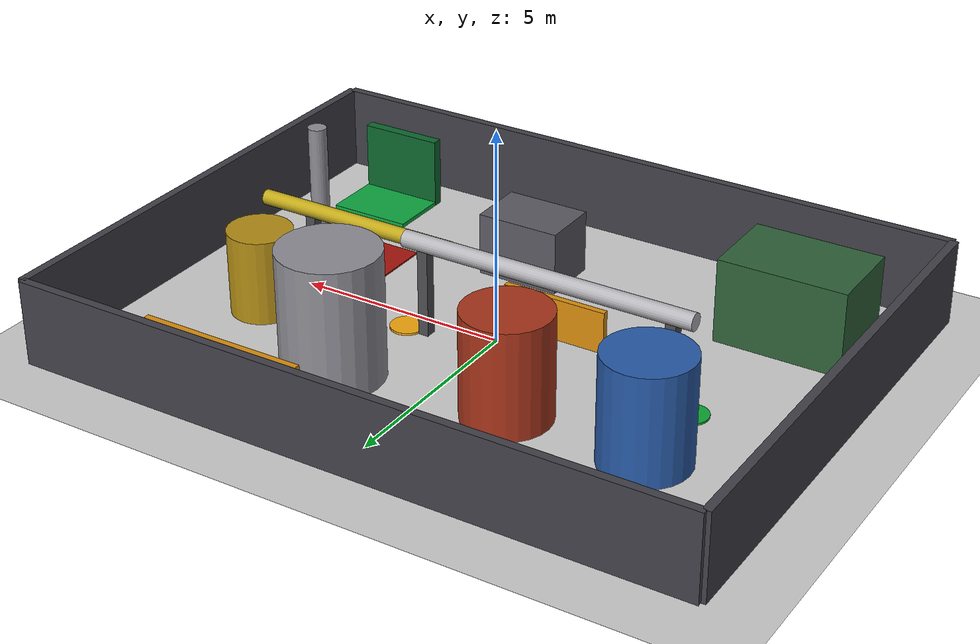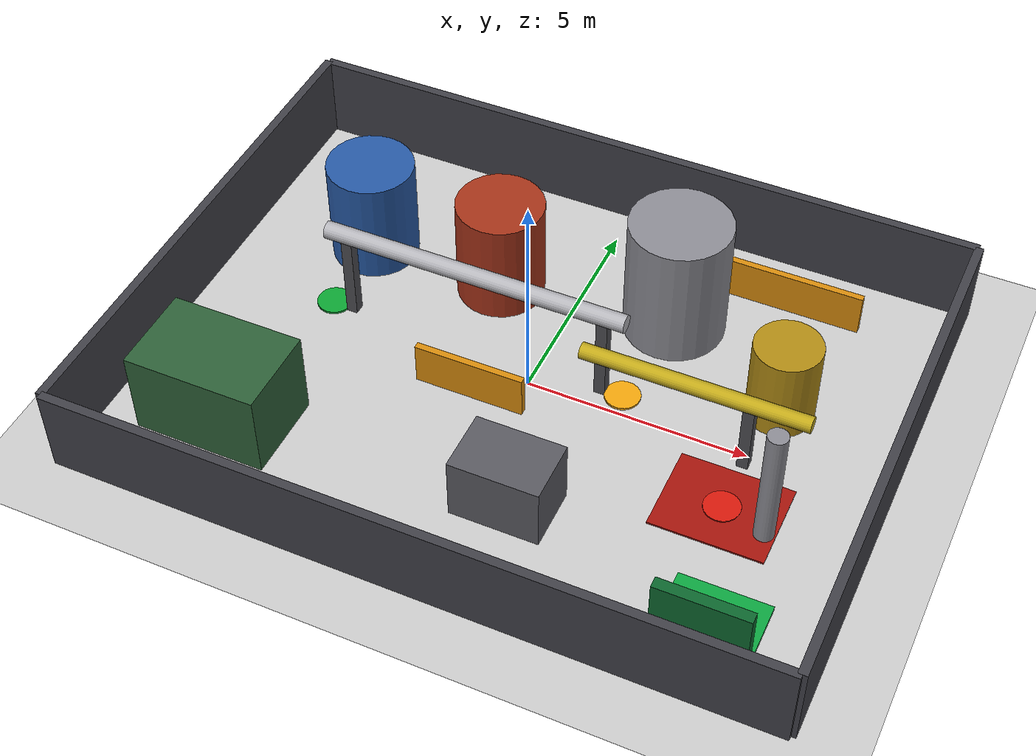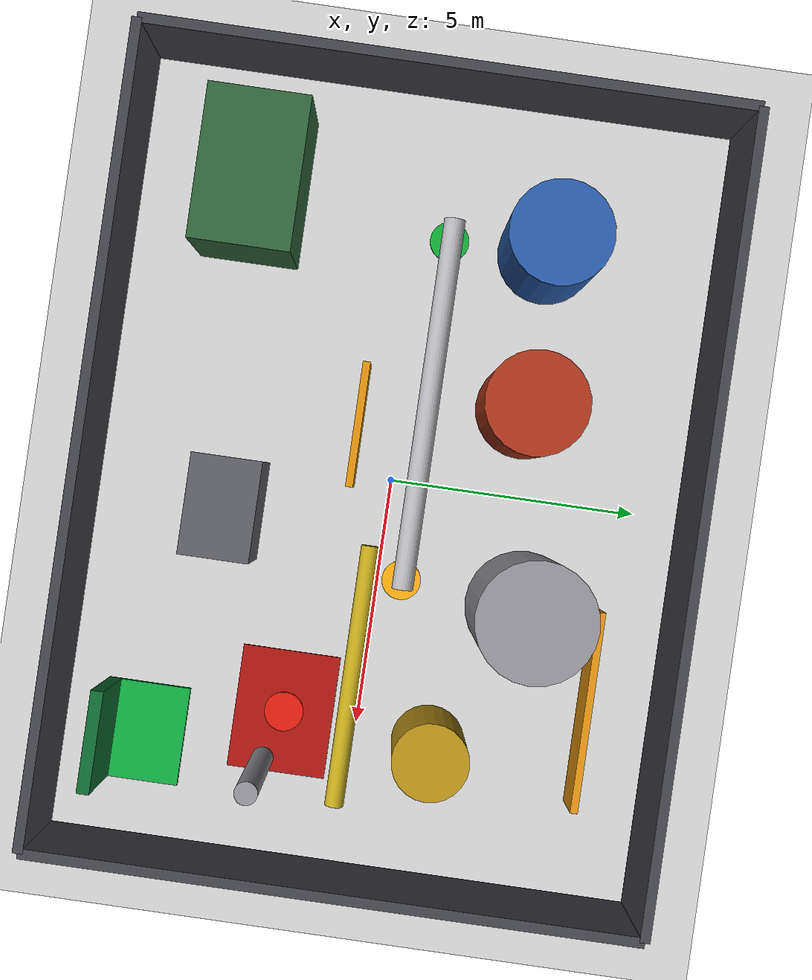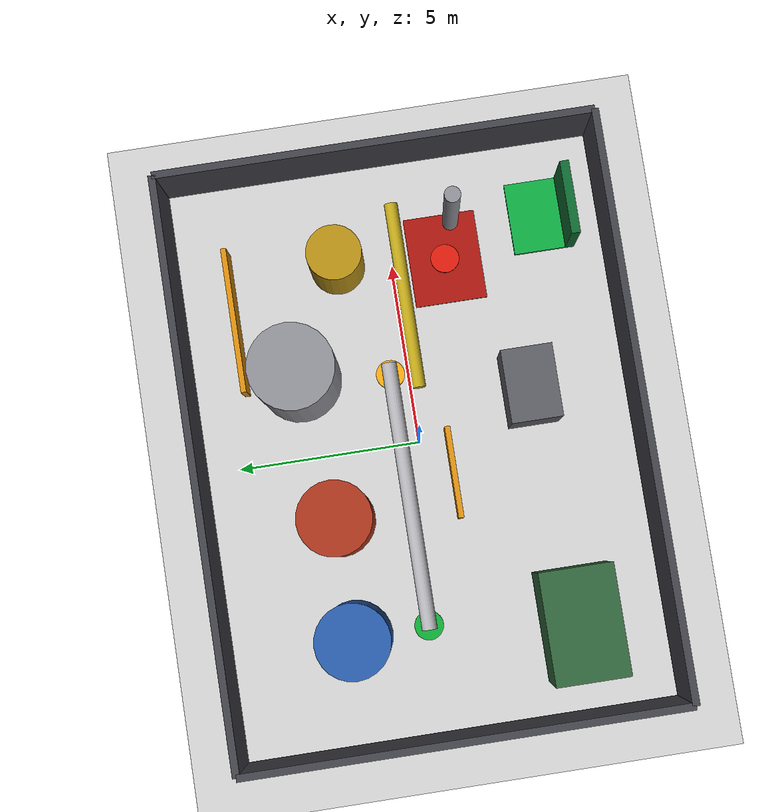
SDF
<?xml version="1.0" ?>
<sdf version="1.6">
  <world name="hazardous_facility">

    <!-- LIGHTING & GROUND         -->

    <include>
      <uri>model://sun</uri>
    </include>

    <include>
      <uri>model://ground_plane</uri>
    </include>

    <!-- FACILITY WALLS            -->

    <model name="wall_north">
      <static>true</static>
      <pose>0 6 1 0 0 0</pose>
      <link name="link">
        <collision name="collision">
          <geometry><box><size>16 0.2 2</size></box></geometry>
        </collision>
        <visual name="visual">
          <geometry><box><size>16 0.2 2</size></box></geometry>
          <material><ambient>0.25 0.25 0.28 1</ambient></material>
        </visual>
      </link>
    </model>

    <model name="wall_south">
      <static>true</static>
      <pose>0 -6 1 0 0 0</pose>
      <link name="link">
        <collision name="collision">
          <geometry><box><size>16 0.2 2</size></box></geometry>
        </collision>
        <visual name="visual">
          <geometry><box><size>16 0.2 2</size></box></geometry>
          <material><ambient>0.25 0.25 0.28 1</ambient></material>
        </visual>
      </link>
    </model>

    <model name="wall_east">
      <static>true</static>
      <pose>8 0 1 0 0 0</pose>
      <link name="link">
        <collision name="collision">
          <geometry><box><size>0.2 12 2</size></box></geometry>
        </collision>
        <visual name="visual">
          <geometry><box><size>0.2 12 2</size></box></geometry>
          <material><ambient>0.25 0.25 0.28 1</ambient></material>
        </visual>
      </link>
    </model>

    <model name="wall_west">
      <static>true</static>
      <pose>-8 0 1 0 0 0</pose>
      <link name="link">
        <collision name="collision">
          <geometry><box><size>0.2 12 2</size></box></geometry>
        </collision>
        <visual name="visual">
          <geometry><box><size>0.2 12 2</size></box></geometry>
          <material><ambient>0.25 0.25 0.28 1</ambient></material>
        </visual>
      </link>
    </model>

    <!-- STORAGE TANKS              -->

    <model name="storage_tank_1">
      <static>true</static>
      <pose>-5 2.5 1.25 0 0 0</pose>
      <link name="link">
        <collision name="collision">
          <geometry><cylinder><radius>1.0</radius><length>2.5</length></cylinder></geometry>
        </collision>
        <visual name="visual">
          <geometry><cylinder><radius>1.0</radius><length>2.5</length></cylinder></geometry>
          <material>
            <ambient>0.15 0.35 0.65 1</ambient>
            <diffuse>0.15 0.35 0.65 1</diffuse>
          </material>
        </visual>
      </link>
    </model>

    <model name="storage_tank_2">
      <static>true</static>
      <pose>-1.8 2.5 1.25 0 0 0</pose>
      <link name="link">
        <collision name="collision">
          <geometry><cylinder><radius>1.0</radius><length>2.5</length></cylinder></geometry>
        </collision>
        <visual name="visual">
          <geometry><cylinder><radius>1.0</radius><length>2.5</length></cylinder></geometry>
          <material>
            <ambient>0.65 0.20 0.10 1</ambient>
            <diffuse>0.65 0.20 0.10 1</diffuse>
          </material>
        </visual>
      </link>
    </model>

    <model name="storage_tank_3">
      <static>true</static>
      <pose>2.2 3.0 1.5 0 0 0</pose>
      <link name="link">
        <collision name="collision">
          <geometry><cylinder><radius>1.15</radius><length>3.0</length></cylinder></geometry>
        </collision>
        <visual name="visual">
          <geometry><cylinder><radius>1.15</radius><length>3.0</length></cylinder></geometry>
          <material>
            <ambient>0.55 0.55 0.58 1</ambient>
            <diffuse>0.55 0.55 0.58 1</diffuse>
          </material>
        </visual>
      </link>
    </model>

    <model name="storage_tank_4">
      <static>true</static>
      <pose>5.2 1.5 1.0 0 0 0</pose>
      <link name="link">
        <collision name="collision">
          <geometry><cylinder><radius>0.75</radius><length>2.0</length></cylinder></geometry>
        </collision>
        <visual name="visual">
          <geometry><cylinder><radius>0.75</radius><length>2.0</length></cylinder></geometry>
          <material>
            <ambient>0.70 0.55 0.08 1</ambient>
            <diffuse>0.70 0.55 0.08 1</diffuse>
          </material>
        </visual>
      </link>
    </model>

    <!-- PIPE RACKS / PIPELINES    -->

    <!-- Main raised pipeline -->
    <model name="pipeline_main">
      <static>true</static>
      <pose>-1.5 0.5 2.2 0 1.5708 0</pose>
      <link name="link">
        <collision name="collision">
          <geometry><cylinder><radius>0.20</radius><length>7.0</length></cylinder></geometry>
        </collision>
        <visual name="visual">
          <geometry><cylinder><radius>0.20</radius><length>7.0</length></cylinder></geometry>
          <material>
            <ambient>0.70 0.70 0.72 1</ambient>
            <diffuse>0.70 0.70 0.72 1</diffuse>
          </material>
        </visual>
      </link>
    </model>

    <!-- Second pipeline -->
    <model name="pipeline_secondary">
      <static>true</static>
      <pose>3.8 -0.2 1.8 0 1.5708 0</pose>
      <link name="link">
        <collision name="collision">
          <geometry><cylinder><radius>0.18</radius><length>5.0</length></cylinder></geometry>
        </collision>
        <visual name="visual">
          <geometry><cylinder><radius>0.18</radius><length>5.0</length></cylinder></geometry>
          <material>
            <ambient>0.75 0.65 0.10 1</ambient>
            <diffuse>0.75 0.65 0.10 1</diffuse>
          </material>
        </visual>
      </link>
    </model>

    <!-- Vertical process pipe -->
    <model name="pipeline_vertical">
      <static>true</static>
      <pose>6.0 -1.8 1.5 0 0 0</pose>
      <link name="link">
        <collision name="collision">
          <geometry><cylinder><radius>0.22</radius><length>3.0</length></cylinder></geometry>
        </collision>
        <visual name="visual">
          <geometry><cylinder><radius>0.22</radius><length>3.0</length></cylinder></geometry>
          <material>
            <ambient>0.55 0.55 0.58 1</ambient>
            <diffuse>0.55 0.55 0.58 1</diffuse>
          </material>
        </visual>
      </link>
    </model>

    <!-- Pipe supports -->
    <model name="pipe_support_1">
      <static>true</static>
      <pose>-4.5 0.5 1.1 0 0 0</pose>
      <link name="link">
        <collision name="collision">
          <geometry><box><size>0.25 0.25 2.2</size></box></geometry>
        </collision>
        <visual name="visual">
          <geometry><box><size>0.25 0.25 2.2</size></box></geometry>
          <material><ambient>0.30 0.30 0.32 1</ambient></material>
        </visual>
      </link>
    </model>

    <model name="pipe_support_2">
      <static>true</static>
      <pose>1.5 0.5 1.1 0 0 0</pose>
      <link name="link">
        <collision name="collision">
          <geometry><box><size>0.25 0.25 2.2</size></box></geometry>
        </collision>
        <visual name="visual">
          <geometry><box><size>0.25 0.25 2.2</size></box></geometry>
          <material><ambient>0.30 0.30 0.32 1</ambient></material>
        </visual>
      </link>
    </model>

    <model name="pipe_support_3">
      <static>true</static>
      <pose>5.0 -0.2 0.9 0 0 0</pose>
      <link name="link">
        <collision name="collision">
          <geometry><box><size>0.25 0.25 1.8</size></box></geometry>
        </collision>
        <visual name="visual">
          <geometry><box><size>0.25 0.25 1.8</size></box></geometry>
          <material><ambient>0.30 0.30 0.32 1</ambient></material>
        </visual>
      </link>
    </model>

    <!-- CONTROL / PROCESS BUILDING -->

    <model name="control_building">
      <static>true</static>
      <pose>-5.5 -3.5 1.0 0 0 0</pose>
      <link name="link">
        <collision name="collision">
          <geometry><box><size>3.0 2.0 2.0</size></box></geometry>
        </collision>
        <visual name="visual">
          <geometry><box><size>3.0 2.0 2.0</size></box></geometry>
          <material>
            <ambient>0.18 0.38 0.22 1</ambient>
            <diffuse>0.18 0.38 0.22 1</diffuse>
          </material>
        </visual>
      </link>
    </model>

    <!-- Small process unit -->
    <model name="process_unit">
      <static>true</static>
      <pose>1.0 -3.2 0.75 0 0 0</pose>
      <link name="link">
        <collision name="collision">
          <geometry><box><size>2.0 1.4 1.5</size></box></geometry>
        </collision>
        <visual name="visual">
          <geometry><box><size>2.0 1.4 1.5</size></box></geometry>
          <material>
            <ambient>0.35 0.35 0.38 1</ambient>
            <diffuse>0.35 0.35 0.38 1</diffuse>
          </material>
        </visual>
      </link>
    </model>

    <!-- SAFETY BARRIERS           -->

    <model name="barrier_1">
      <static>true</static>
      <pose>4.0 4.5 0.5 0 0 0</pose>
      <link name="link">
        <collision name="collision">
          <geometry><box><size>4.0 0.15 1.0</size></box></geometry>
        </collision>
        <visual name="visual">
          <geometry><box><size>4.0 0.15 1.0</size></box></geometry>
          <material>
            <ambient>0.85 0.55 0.05 1</ambient>
            <diffuse>0.85 0.55 0.05 1</diffuse>
          </material>
        </visual>
      </link>
    </model>

    <model name="barrier_2">
      <static>true</static>
      <pose>-1.0 -0.8 0.5 0 0 0</pose>
      <link name="link">
        <collision name="collision">
          <geometry><box><size>2.5 0.15 1.0</size></box></geometry>
        </collision>
        <visual name="visual">
          <geometry><box><size>2.5 0.15 1.0</size></box></geometry>
          <material>
            <ambient>0.85 0.55 0.05 1</ambient>
            <diffuse>0.85 0.55 0.05 1</diffuse>
          </material>
        </visual>
      </link>
    </model>

    <!-- HAZARD ZONE MARKER        -->

    <model name="hazard_zone">
      <static>true</static>
      <pose>5.0 -1.5 0.02 0 0 0</pose>
      <link name="link">
        <visual name="visual">
          <geometry>
            <box><size>2.5 2.0 0.04</size></box>
          </geometry>
          <material>
            <ambient>0.65 0.08 0.05 1</ambient>
            <diffuse>0.65 0.08 0.05 1</diffuse>
          </material>
        </visual>
      </link>
    </model>

    <!-- HOME / CHARGING STATION   -->

    <model name="charging_pad">
      <static>true</static>
      <pose>5.8 -4.2 0.05 0 0 0</pose>
      <link name="link">
        <visual name="visual">
          <geometry><box><size>2.0 1.5 0.1</size></box></geometry>
          <material>
            <ambient>0.05 0.65 0.25 1</ambient>
            <diffuse>0.05 0.65 0.25 1</diffuse>
          </material>
        </visual>
      </link>
    </model>

    <model name="charging_unit">
      <static>true</static>
      <pose>5.8 -5.0 0.85 0 0 0</pose>
      <link name="link">
        <collision name="collision">
          <geometry><box><size>2.0 0.25 1.7</size></box></geometry>
        </collision>
        <visual name="visual">
          <geometry><box><size>2.0 0.25 1.7</size></box></geometry>
          <material>
            <ambient>0.05 0.40 0.18 1</ambient>
            <diffuse>0.05 0.40 0.18 1</diffuse>
          </material>
        </visual>
      </link>
    </model>

    <!-- INSPECTION POINTS         -->

    <model name="inspection_point_1">
      <static>true</static>
      <pose>-5 0.5 0.03 0 0 0</pose>
      <link name="link">
        <visual name="visual">
          <geometry><cylinder><radius>0.40</radius><length>0.05</length></cylinder></geometry>
          <material>
            <ambient>0.05 0.65 0.20 1</ambient>
            <diffuse>0.05 0.65 0.20 1</diffuse>
          </material>
        </visual>
      </link>
    </model>

    <model name="inspection_point_2">
      <static>true</static>
      <pose>2.0 0.5 0.03 0 0 0</pose>
      <link name="link">
        <visual name="visual">
          <geometry><cylinder><radius>0.40</radius><length>0.05</length></cylinder></geometry>
          <material>
            <ambient>0.95 0.65 0.05 1</ambient>
            <diffuse>0.95 0.65 0.05 1</diffuse>
          </material>
        </visual>
      </link>
    </model>

    <model name="inspection_point_3">
      <static>true</static>
      <pose>5.0 -1.5 0.04 0 0 0</pose>
      <link name="link">
        <visual name="visual">
          <geometry><cylinder><radius>0.40</radius><length>0.05</length></cylinder></geometry>
          <material>
            <ambient>0.85 0.10 0.05 1</ambient>
            <diffuse>0.85 0.10 0.05 1</diffuse>
          </material>
        </visual>
      </link>
    </model>

  </world>
</sdf>
